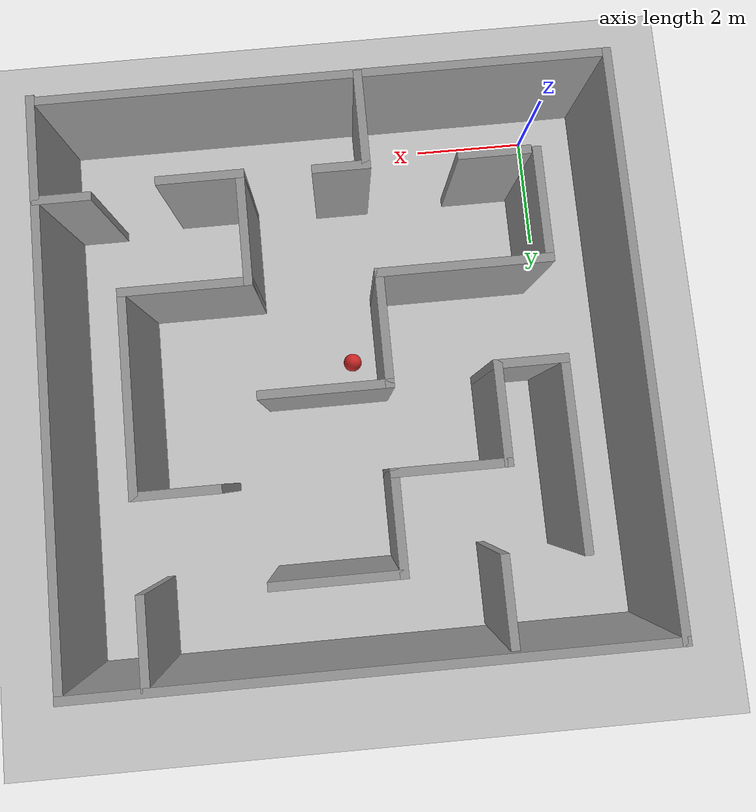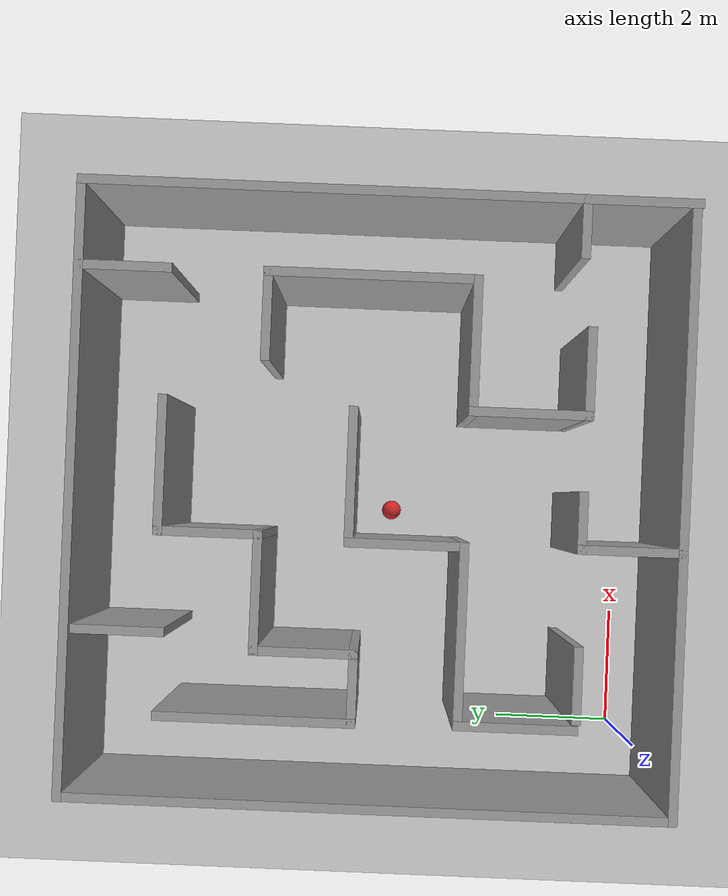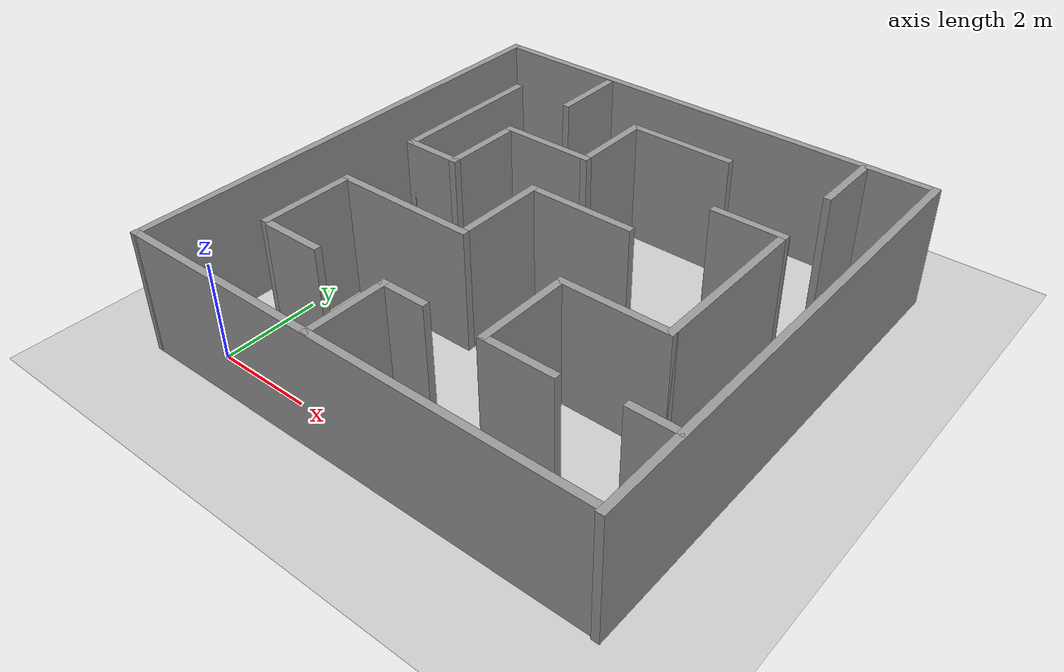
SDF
<sdf version="1.7">
 <world name="default">
  <light name="sun" type="directional">
   <pose>0 0 10 0 -0 0</pose>
   <diffuse>0.8 0.8 0.8 1</diffuse>
   <specular>0.2 0.2 0.2 1</specular>
   <attenuation>
    <range>1000</range>
    <constant>0.9</constant>
    <linear>0.01</linear>
    <quadratic>0.001</quadratic>
   </attenuation>
   <direction>-0.5 0.1 -0.9</direction>
   <spot><inner_angle>0</inner_angle><outer_angle>0</outer_angle><falloff>0</falloff></spot>
  </light>
  <model name="ground_plane">
   <static>1</static>
   <link name="link">
    <collision name="collision">
     <geometry><plane><normal>0 0 1</normal><size>100 100</size></plane></geometry>
     <surface><friction><ode><mu>100</mu><mu2>50</mu2></ode></friction></surface>
    </collision>
    <visual name="visual">
     <cast_shadows>0</cast_shadows>
     <geometry><plane><normal>0 0 1</normal><size>100 100</size></plane></geometry>
     <material>
      <script><uri>file://media/materials/scripts/gazebo.material</uri><name>Gazebo/Grey</name></script>
     </material>
    </visual>
   </link>
  </model>
  <gravity>0 0 -9.8</gravity>
  <magnetic_field>6e-06 2.3e-05 -4.2e-05</magnetic_field>
  <atmosphere type="adiabatic"/>
  <physics type="ode">
   <max_step_size>0.001</max_step_size>
   <real_time_factor>1</real_time_factor>
   <real_time_update_rate>1000</real_time_update_rate>
  </physics>
  <scene><ambient>0.4 0.4 0.4 1</ambient><background>0.7 0.7 0.7 1</background><shadows>1</shadows></scene>
  <spherical_coordinates>
   <surface_model>EARTH_WGS84</surface_model>
   <latitude_deg>0</latitude_deg>
   <longitude_deg>0</longitude_deg>
   <elevation>0</elevation>
   <heading_deg>0</heading_deg>
  </spherical_coordinates>
  <model name="maze_room">
   <pose>3.84635 4.32901 0 0 -0 1.57166</pose>
   <link name="Wall_0">
    <collision name="Wall_0_Collision">
     <geometry><box><size>10 0.15 2.5</size></box></geometry>
     <pose>0 0 1.25 0 -0 0</pose>
    </collision>
    <visual name="Wall_0_Visual">
     <pose>0 0 1.25 0 -0 0</pose>
     <geometry><box><size>10 0.15 2.5</size></box></geometry>
     <material>
      <script><uri>file://media/materials/scripts/gazebo.material</uri><name>Gazebo/Grey</name></script>
      <ambient>1 1 1 1</ambient>
     </material>
     <meta><layer>0</layer></meta>
    </visual>
    <pose>-2.8e-05 -4.92878 0 0 -0 0</pose>
   </link>
   <link name="Wall_10">
    <collision name="Wall_10_Collision">
     <geometry><box><size>1.25 0.15 2.5</size></box></geometry>
     <pose>0 0 1.25 0 -0 0</pose>
    </collision>
    <visual name="Wall_10_Visual">
     <pose>0 0 1.25 0 -0 0</pose>
     <geometry><box><size>1.25 0.15 2.5</size></box></geometry>
     <material>
      <script><uri>file://media/materials/scripts/gazebo.material</uri><name>Gazebo/Grey</name></script>
      <ambient>1 1 1 1</ambient>
     </material>
     <meta><layer>0</layer></meta>
    </visual>
    <pose>-3.28627 2.82175 0 0 -0 -1.5708</pose>
   </link>
   <link name="Wall_12">
    <collision name="Wall_12_Collision">
     <geometry><box><size>2 0.15 2.5</size></box></geometry>
     <pose>0 0 1.25 0 -0 0</pose>
    </collision>
    <visual name="Wall_12_Visual">
     <pose>0 0 1.25 0 -0 0</pose>
     <geometry><box><size>2 0.15 2.5</size></box></geometry>
     <material>
      <script><uri>file://media/materials/scripts/gazebo.material</uri><name>Gazebo/Grey</name></script>
      <ambient>1 1 1 1</ambient>
     </material>
     <meta><layer>0</layer></meta>
    </visual>
    <pose>-2.32609 3.53495 0 0 -0 0</pose>
   </link>
   <link name="Wall_13">
    <collision name="Wall_13_Collision">
     <geometry><box><size>3 0.15 2.5</size></box></geometry>
     <pose>0 0 1.25 0 -0 0</pose>
    </collision>
    <visual name="Wall_13_Visual">
     <pose>0 0 1.25 0 -0 0</pose>
     <geometry><box><size>3 0.15 2.5</size></box></geometry>
     <material>
      <script><uri>file://media/materials/scripts/gazebo.material</uri><name>Gazebo/Grey</name></script>
      <ambient>1 1 1 1</ambient>
     </material>
     <meta><layer>0</layer></meta>
    </visual>
    <pose>-1.40109 2.10995 0 0 -0 -1.5708</pose>
   </link>
   <link name="Wall_14">
    <collision name="Wall_14_Collision">
     <geometry><box><size>2 0.15 2.5</size></box></geometry>
     <pose>0 0 1.25 0 -0 0</pose>
    </collision>
    <visual name="Wall_14_Visual">
     <pose>0 0 1.25 0 -0 0</pose>
     <geometry><box><size>2 0.15 2.5</size></box></geometry>
     <material>
      <script><uri>file://media/materials/scripts/gazebo.material</uri><name>Gazebo/Grey</name></script>
      <ambient>1 1 1 1</ambient>
     </material>
     <meta><layer>0</layer></meta>
    </visual>
    <pose>-0.476086 0.684954 0 0 -0 0</pose>
   </link>
   <link name="Wall_15">
    <collision name="Wall_15_Collision">
     <geometry><box><size>2.25 0.15 2.5</size></box></geometry>
     <pose>0 0 1.25 0 -0 0</pose>
    </collision>
    <visual name="Wall_15_Visual">
     <pose>0 0 1.25 0 -0 0</pose>
     <geometry><box><size>2.25 0.15 2.5</size></box></geometry>
     <material>
      <script><uri>file://media/materials/scripts/gazebo.material</uri><name>Gazebo/Grey</name></script>
      <ambient>1 1 1 1</ambient>
     </material>
     <meta><layer>0</layer></meta>
    </visual>
    <pose>0.448914 -0.365046 0 0 -0 -1.5708</pose>
   </link>
   <link name="Wall_18">
    <collision name="Wall_18_Collision">
     <geometry><box><size>1.5 0.15 2.5</size></box></geometry>
     <pose>0 0 1.25 0 -0 0</pose>
    </collision>
    <visual name="Wall_18_Visual">
     <pose>0 0 1.25 0 -0 0</pose>
     <geometry><box><size>1.5 0.15 2.5</size></box></geometry>
     <material>
      <script><uri>file://media/materials/scripts/gazebo.material</uri><name>Gazebo/Grey</name></script>
      <ambient>1 1 1 1</ambient>
     </material>
     <meta><layer>0</layer></meta>
    </visual>
    <pose>-3.30449 -2.1574 0 0 -0 1.5708</pose>
   </link>
   <link name="Wall_20">
    <collision name="Wall_20_Collision">
     <geometry><box><size>2 0.15 2.5</size></box></geometry>
     <pose>0 0 1.25 0 -0 0</pose>
    </collision>
    <visual name="Wall_20_Visual">
     <pose>0 0 1.25 0 -0 0</pose>
     <geometry><box><size>2 0.15 2.5</size></box></geometry>
     <material>
      <script><uri>file://media/materials/scripts/gazebo.material</uri><name>Gazebo/Grey</name></script>
      <ambient>1 1 1 1</ambient>
     </material>
     <meta><layer>0</layer></meta>
    </visual>
    <pose>-2.37949 -1.4824 0 0 -0 0</pose>
   </link>
   <link name="Wall_21">
    <collision name="Wall_21_Collision">
     <geometry><box><size>2.25 0.15 2.5</size></box></geometry>
     <pose>0 0 1.25 0 -0 0</pose>
    </collision>
    <visual name="Wall_21_Visual">
     <pose>0 0 1.25 0 -0 0</pose>
     <geometry><box><size>2.25 0.15 2.5</size></box></geometry>
     <material>
      <script><uri>file://media/materials/scripts/gazebo.material</uri><name>Gazebo/Grey</name></script>
      <ambient>1 1 1 1</ambient>
     </material>
     <meta><layer>0</layer></meta>
    </visual>
    <pose>-1.45449 -2.5324 0 0 -0 -1.5708</pose>
   </link>
   <link name="Wall_22">
    <collision name="Wall_22_Collision">
     <geometry><box><size>3.5 0.15 2.5</size></box></geometry>
     <pose>0 0 1.25 0 -0 0</pose>
    </collision>
    <visual name="Wall_22_Visual">
     <pose>0 0 1.25 0 -0 0</pose>
     <geometry><box><size>3.5 0.15 2.5</size></box></geometry>
     <material>
      <script><uri>file://media/materials/scripts/gazebo.material</uri><name>Gazebo/Grey</name></script>
      <ambient>1 1 1 1</ambient>
     </material>
     <meta><layer>0</layer></meta>
    </visual>
    <pose>0.220512 -3.5824 0 0 -0 0</pose>
   </link>
   <link name="Wall_23">
    <collision name="Wall_23_Collision">
     <geometry><box><size>1.5 0.15 2.5</size></box></geometry>
     <pose>0 0 1.25 0 -0 0</pose>
    </collision>
    <visual name="Wall_23_Visual">
     <pose>0 0 1.25 0 -0 0</pose>
     <geometry><box><size>1.5 0.15 2.5</size></box></geometry>
     <material>
      <script><uri>file://media/materials/scripts/gazebo.material</uri><name>Gazebo/Grey</name></script>
      <ambient>1 1 1 1</ambient>
     </material>
     <meta><layer>0</layer></meta>
    </visual>
    <pose>1.89551 -2.9074 0 0 -0 1.5708</pose>
   </link>
   <link name="Wall_25">
    <collision name="Wall_25_Collision">
     <geometry><box><size>2.25 0.15 2.5</size></box></geometry>
     <pose>0 0 1.25 0 -0 0</pose>
    </collision>
    <visual name="Wall_25_Visual">
     <pose>0 0 1.25 0 -0 0</pose>
     <geometry><box><size>2.25 0.15 2.5</size></box></geometry>
     <material>
      <script><uri>file://media/materials/scripts/gazebo.material</uri><name>Gazebo/Grey</name></script>
      <ambient>1 1 1 1</ambient>
     </material>
     <meta><layer>0</layer></meta>
    </visual>
    <pose>3.49551 -0.432402 0 0 -0 1.5708</pose>
   </link>
   <link name="Wall_26">
    <collision name="Wall_26_Collision">
     <geometry><box><size>1.75 0.15 2.5</size></box></geometry>
     <pose>0 0 1.25 0 -0 0</pose>
    </collision>
    <visual name="Wall_26_Visual">
     <pose>0 0 1.25 0 -0 0</pose>
     <geometry><box><size>1.75 0.15 2.5</size></box></geometry>
     <material>
      <script><uri>file://media/materials/scripts/gazebo.material</uri><name>Gazebo/Grey</name></script>
      <ambient>1 1 1 1</ambient>
     </material>
     <meta><layer>0</layer></meta>
    </visual>
    <pose>2.69551 0.617598 0 0 -0 3.14159</pose>
   </link>
   <link name="Wall_27">
    <collision name="Wall_27_Collision">
     <geometry><box><size>2 0.15 2.5</size></box></geometry>
     <pose>0 0 1.25 0 -0 0</pose>
    </collision>
    <visual name="Wall_27_Visual">
     <pose>0 0 1.25 0 -0 0</pose>
     <geometry><box><size>2 0.15 2.5</size></box></geometry>
     <material>
      <script><uri>file://media/materials/scripts/gazebo.material</uri><name>Gazebo/Grey</name></script>
      <ambient>1 1 1 1</ambient>
     </material>
     <meta><layer>0</layer></meta>
    </visual>
    <pose>1.89551 1.5426 0 0 -0 1.5708</pose>
   </link>
   <link name="Wall_28">
    <collision name="Wall_28_Collision">
     <geometry><box><size>1.75 0.15 2.5</size></box></geometry>
     <pose>0 0 1.25 0 -0 0</pose>
    </collision>
    <visual name="Wall_28_Visual">
     <pose>0 0 1.25 0 -0 0</pose>
     <geometry><box><size>1.75 0.15 2.5</size></box></geometry>
     <material>
      <script><uri>file://media/materials/scripts/gazebo.material</uri><name>Gazebo/Grey</name></script>
      <ambient>1 1 1 1</ambient>
     </material>
     <meta><layer>0</layer></meta>
    </visual>
    <pose>1.09551 2.4676 0 0 -0 3.14159</pose>
   </link>
   <link name="Wall_29">
    <collision name="Wall_29_Collision">
     <geometry><box><size>1.25 0.15 2.5</size></box></geometry>
     <pose>0 0 1.25 0 -0 0</pose>
    </collision>
    <visual name="Wall_29_Visual">
     <pose>0 0 1.25 0 -0 0</pose>
     <geometry><box><size>1.25 0.15 2.5</size></box></geometry>
     <material>
      <script><uri>file://media/materials/scripts/gazebo.material</uri><name>Gazebo/Grey</name></script>
      <ambient>1 1 1 1</ambient>
     </material>
     <meta><layer>0</layer></meta>
    </visual>
    <pose>0.295512 3.0176 0 0 -0 1.5708</pose>
   </link>
   <link name="Wall_30">
    <collision name="Wall_30_Collision">
     <geometry><box><size>3.25 0.15 2.5</size></box></geometry>
     <pose>0 0 1.25 0 -0 0</pose>
    </collision>
    <visual name="Wall_30_Visual">
     <pose>0 0 1.25 0 -0 0</pose>
     <geometry><box><size>3.25 0.15 2.5</size></box></geometry>
     <material>
      <script><uri>file://media/materials/scripts/gazebo.material</uri><name>Gazebo/Grey</name></script>
      <ambient>1 1 1 1</ambient>
     </material>
     <meta><layer>0</layer></meta>
    </visual>
    <pose>1.84551 3.5676 0 0 -0 0</pose>
   </link>
   <link name="Wall_32">
    <collision name="Wall_32_Collision">
     <geometry><box><size>1.5 0.15 2.5</size></box></geometry>
     <pose>0 0 1.25 0 -0 0</pose>
    </collision>
    <visual name="Wall_32_Visual">
     <pose>0 0 1.25 0 -0 0</pose>
     <geometry><box><size>1.5 0.15 2.5</size></box></geometry>
     <material>
      <script><uri>file://media/materials/scripts/gazebo.material</uri><name>Gazebo/Grey</name></script>
      <ambient>1 1 1 1</ambient>
     </material>
     <meta><layer>0</layer></meta>
    </visual>
    <pose>4.17824 -3.57116 0 0 -0 0</pose>
   </link>
   <link name="Wall_34">
    <collision name="Wall_34_Collision">
     <geometry><box><size>1 0.15 2.5</size></box></geometry>
     <pose>0 0 1.25 0 -0 0</pose>
    </collision>
    <visual name="Wall_34_Visual">
     <pose>0 0 1.25 0 -0 0</pose>
     <geometry><box><size>1 0.15 2.5</size></box></geometry>
     <material>
      <script><uri>file://media/materials/scripts/gazebo.material</uri><name>Gazebo/Grey</name></script>
      <ambient>1 1 1 1</ambient>
     </material>
     <meta><layer>0</layer></meta>
    </visual>
    <pose>-3.14555 -4.48295 0 0 -0 1.5708</pose>
   </link>
   <link name="Wall_36">
    <collision name="Wall_36_Collision">
     <geometry><box><size>1.75 0.15 2.5</size></box></geometry>
     <pose>0 0 1.25 0 -0 0</pose>
    </collision>
    <visual name="Wall_36_Visual">
     <pose>0 0 1.25 0 -0 0</pose>
     <geometry><box><size>1.75 0.15 2.5</size></box></geometry>
     <material>
      <script><uri>file://media/materials/scripts/gazebo.material</uri><name>Gazebo/Grey</name></script>
      <ambient>1 1 1 1</ambient>
     </material>
     <meta><layer>0</layer></meta>
    </visual>
    <pose>-4.06931 0.650296 0 0 -0 0</pose>
   </link>
   <link name="Wall_37">
    <collision name="Wall_37_Collision">
     <geometry><box><size>1 0.15 2.5</size></box></geometry>
     <pose>0 0 1.25 0 -0 0</pose>
    </collision>
    <visual name="Wall_37_Visual">
     <pose>0 0 1.25 0 -0 0</pose>
     <geometry><box><size>1 0.15 2.5</size></box></geometry>
     <material>
      <script><uri>file://media/materials/scripts/gazebo.material</uri><name>Gazebo/Grey</name></script>
      <ambient>1 1 1 1</ambient>
     </material>
     <meta><layer>0</layer></meta>
    </visual>
    <pose>-3.26931 0.225296 0 0 -0 -1.5708</pose>
   </link>
   <link name="Wall_39">
    <collision name="Wall_39_Collision">
     <geometry><box><size>1.5 0.15 2.5</size></box></geometry>
     <pose>0 0 1.25 0 -0 0</pose>
    </collision>
    <visual name="Wall_39_Visual">
     <pose>0 0 1.25 0 -0 0</pose>
     <geometry><box><size>1.5 0.15 2.5</size></box></geometry>
     <material>
      <script><uri>file://media/materials/scripts/gazebo.material</uri><name>Gazebo/Grey</name></script>
      <ambient>1 1 1 1</ambient>
     </material>
     <meta><layer>0</layer></meta>
    </visual>
    <pose>4.0727 2.23334 0 0 -0 0</pose>
   </link>
   <link name="Wall_4">
    <collision name="Wall_4_Collision">
     <geometry><box><size>9.97232 0.15 2.5</size></box></geometry>
     <pose>0 0 1.25 0 -0 0</pose>
    </collision>
    <visual name="Wall_4_Visual">
     <pose>0 0 1.25 0 -0 0</pose>
     <geometry><box><size>9.97232 0.15 2.5</size></box></geometry>
     <material>
      <script><uri>file://media/materials/scripts/gazebo.material</uri><name>Gazebo/Grey</name></script>
      <ambient>1 1 1 1</ambient>
     </material>
     <meta><layer>0</layer></meta>
    </visual>
    <pose>-4.88985 0.017561 0 0 -0 1.5708</pose>
   </link>
   <link name="Wall_6">
    <collision name="Wall_6_Collision">
     <geometry><box><size>10 0.15 2.5</size></box></geometry>
     <pose>0 0 1.25 0 -0 0</pose>
    </collision>
    <visual name="Wall_6_Visual">
     <pose>0 0 1.25 0 -0 0</pose>
     <geometry><box><size>10 0.15 2.5</size></box></geometry>
     <material>
      <script><uri>file://media/materials/scripts/gazebo.material</uri><name>Gazebo/Grey</name></script>
      <ambient>1 1 1 1</ambient>
     </material>
     <meta><layer>0</layer></meta>
    </visual>
    <pose>4.92497 -0.003777 0 0 -0 1.5708</pose>
   </link>
   <link name="Wall_8">
    <collision name="Wall_8_Collision">
     <geometry><box><size>9.96482 0.15 2.5</size></box></geometry>
     <pose>0 0 1.25 0 -0 0</pose>
    </collision>
    <visual name="Wall_8_Visual">
     <pose>0 0 1.25 0 -0 0</pose>
     <geometry><box><size>9.96482 0.15 2.5</size></box></geometry>
     <material>
      <script><uri>file://media/materials/scripts/gazebo.material</uri><name>Gazebo/Grey</name></script>
      <ambient>1 1 1 1</ambient>
     </material>
     <meta><layer>0</layer></meta>
    </visual>
    <pose>0.017561 4.92497 0 0 -0 -0.000764</pose>
   </link>
   <static>1</static>
  </model>
  <model name="RoboCup SPL Ball">
   <static>0</static>
   <link name="ball">
    <inertial>
     <mass>0.0056</mass>
     <inertia>
      <ixx>2.37e-06</ixx>
      <iyy>2.37e-06</iyy>
      <izz>2.37e-06</izz>
      <ixy>0</ixy>
      <ixz>0</ixz>
      <iyz>0</iyz>
     </inertia>
    </inertial>
    <collision name="collision"><geometry><sphere><radius>0.000940945</radius></sphere></geometry></collision>
    <visual name="visual">
     <geometry><sphere><radius>0.000940945</radius></sphere></geometry>
     <material>
      <script><uri>file://media/materials/scripts/gazebo.material</uri><name>Gazebo/RedBright</name></script>
     </material>
    </visual>
   </link>
   <pose>3.69957 3.92788 0.000941 -0.042115 -0.004784 0.00012</pose>
  </model>
  <model name="RoboCup SPL Ball_0">
   <static>0</static>
   <link name="ball">
    <inertial>
     <mass>0.0056</mass>
     <inertia>
      <ixx>2.37e-06</ixx>
      <iyy>2.37e-06</iyy>
      <izz>2.37e-06</izz>
      <ixy>0</ixy>
      <ixz>0</ixz>
      <iyz>0</iyz>
     </inertia>
    </inertial>
    <collision name="collision"><geometry><sphere><radius>0.16886</radius></sphere></geometry></collision>
    <visual name="visual">
     <geometry><sphere><radius>0.16886</radius></sphere></geometry>
     <material>
      <script><uri>file://media/materials/scripts/gazebo.material</uri><name>Gazebo/RedBright</name></script>
     </material>
    </visual>
   </link>
   <pose>3.68234 4.07951 0.16886 -0.042605 -0.004849 -0.000219</pose>
  </model>
 </world>
</sdf>
